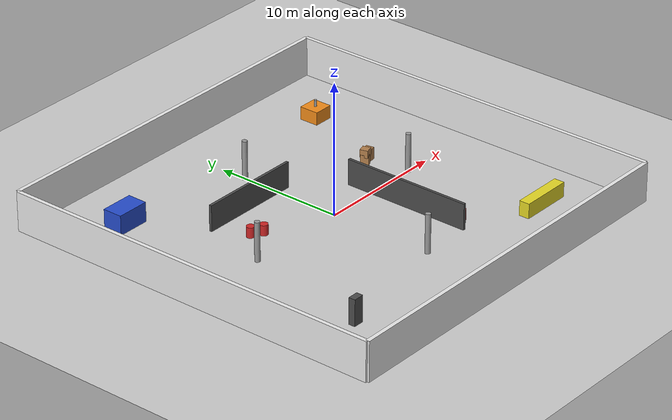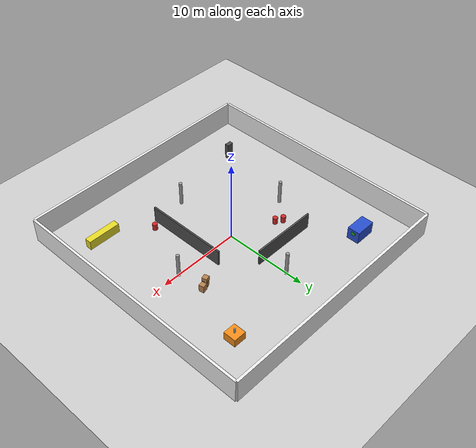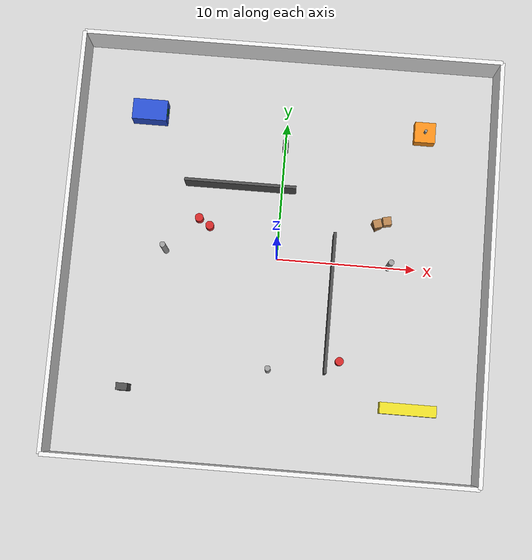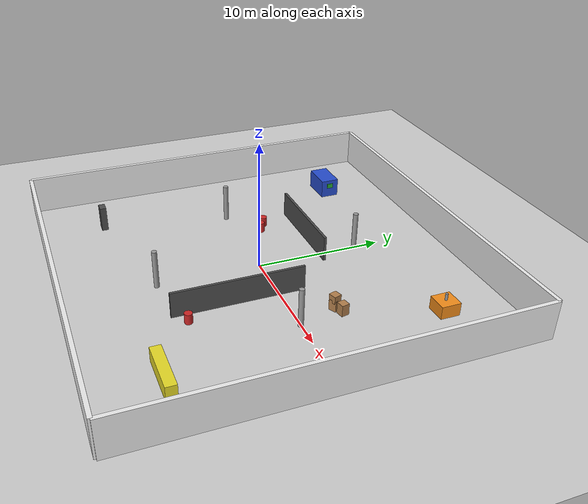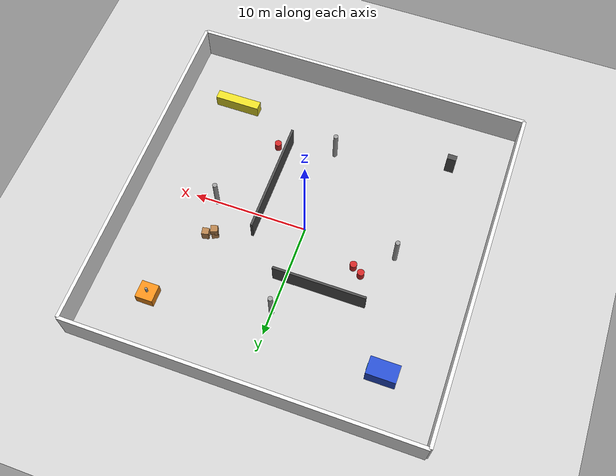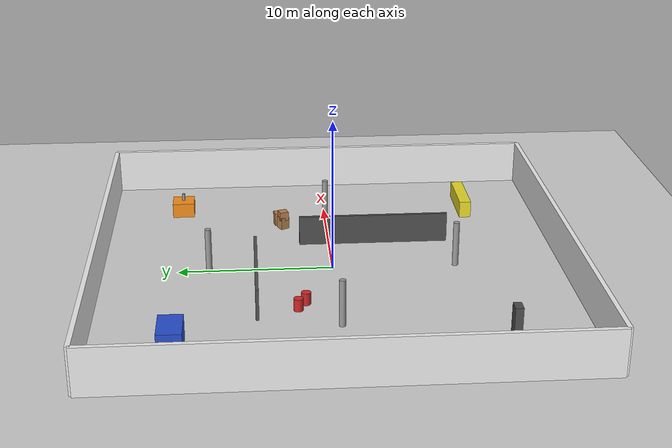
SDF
<?xml version="1.0" ?>
<sdf version="1.6">
  <world name="factory_world">

    <!-- ═══════════════════════════════════════
         PHYSICS AND ENVIRONMENT
    ═══════════════════════════════════════ -->
    <physics type="ode">
      <real_time_update_rate>1000.0</real_time_update_rate>
      <max_step_size>0.001</max_step_size>
      <real_time_factor>1.0</real_time_factor>
    </physics>

    <gravity>0 0 -9.81</gravity>

    <!-- Sun light -->
    <light name="sun" type="directional">
      <cast_shadows>true</cast_shadows>
      <pose>0 0 20 0 0 0</pose>
      <diffuse>0.9 0.9 0.9 1</diffuse>
      <specular>0.3 0.3 0.3 1</specular>
      <direction>-0.5 0.2 -1.0</direction>
    </light>

    <!-- Ceiling lights -->
    <light name="ceiling_light_1" type="point">
      <pose>0 0 6 0 0 0</pose>
      <diffuse>0.8 0.8 0.8 1</diffuse>
      <specular>0.1 0.1 0.1 1</specular>
      <attenuation>
        <range>20</range>
        <linear>0.05</linear>
        <constant>0.1</constant>
        <quadratic>0.001</quadratic>
      </attenuation>
    </light>

    <light name="ceiling_light_2" type="point">
      <pose>10 0 6 0 0 0</pose>
      <diffuse>0.8 0.8 0.8 1</diffuse>
      <specular>0.1 0.1 0.1 1</specular>
      <attenuation>
        <range>20</range>
        <linear>0.05</linear>
        <constant>0.1</constant>
        <quadratic>0.001</quadratic>
      </attenuation>
    </light>

    <light name="ceiling_light_3" type="point">
      <pose>-10 0 6 0 0 0</pose>
      <diffuse>0.8 0.8 0.8 1</diffuse>
      <specular>0.1 0.1 0.1 1</specular>
      <attenuation>
        <range>20</range>
        <linear>0.05</linear>
        <constant>0.1</constant>
        <quadratic>0.001</quadratic>
      </attenuation>
    </light>

    <!-- Ground plane -->
    <model name="ground_plane">
      <static>true</static>
      <link name="link">
        <collision name="collision">
          <geometry>
            <plane>
              <normal>0 0 1</normal>
              <size>50 50</size>
            </plane>
          </geometry>
          <surface>
            <friction>
              <ode>
                <mu>1.0</mu>
                <mu2>1.0</mu2>
              </ode>
            </friction>
          </surface>
        </collision>
        <visual name="visual">
          <geometry>
            <plane>
              <normal>0 0 1</normal>
              <size>50 50</size>
            </plane>
          </geometry>
          <material>
            <script>
              <uri>file://media/materials/scripts/gazebo.material</uri>
              <name>Gazebo/Grey</name>
            </script>
          </material>
        </visual>
      </link>
    </model>

    <!-- ═══════════════════════════════════════
         FACTORY OUTER WALLS
    ═══════════════════════════════════════ -->

    <!-- North wall -->
    <model name="wall_north">
      <static>true</static>
      <pose>0 15 1.5 0 0 0</pose>
      <link name="link">
        <collision name="collision">
          <geometry><box><size>30 0.3 3.0</size></box></geometry>
        </collision>
        <visual name="visual">
          <geometry><box><size>30 0.3 3.0</size></box></geometry>
          <material>
            <script>
              <uri>file://media/materials/scripts/gazebo.material</uri>
              <name>Gazebo/White</name>
            </script>
          </material>
        </visual>
      </link>
    </model>

    <!-- South wall -->
    <model name="wall_south">
      <static>true</static>
      <pose>0 -15 1.5 0 0 0</pose>
      <link name="link">
        <collision name="collision">
          <geometry><box><size>30 0.3 3.0</size></box></geometry>
        </collision>
        <visual name="visual">
          <geometry><box><size>30 0.3 3.0</size></box></geometry>
          <material>
            <script>
              <uri>file://media/materials/scripts/gazebo.material</uri>
              <name>Gazebo/White</name>
            </script>
          </material>
        </visual>
      </link>
    </model>

    <!-- East wall -->
    <model name="wall_east">
      <static>true</static>
      <pose>15 0 1.5 0 0 0</pose>
      <link name="link">
        <collision name="collision">
          <geometry><box><size>0.3 30 3.0</size></box></geometry>
        </collision>
        <visual name="visual">
          <geometry><box><size>0.3 30 3.0</size></box></geometry>
          <material>
            <script>
              <uri>file://media/materials/scripts/gazebo.material</uri>
              <name>Gazebo/White</name>
            </script>
          </material>
        </visual>
      </link>
    </model>

    <!-- West wall -->
    <model name="wall_west">
      <static>true</static>
      <pose>-15 0 1.5 0 0 0</pose>
      <link name="link">
        <collision name="collision">
          <geometry><box><size>0.3 30 3.0</size></box></geometry>
        </collision>
        <visual name="visual">
          <geometry><box><size>0.3 30 3.0</size></box></geometry>
          <material>
            <script>
              <uri>file://media/materials/scripts/gazebo.material</uri>
              <name>Gazebo/White</name>
            </script>
          </material>
        </visual>
      </link>
    </model>

    <!-- ═══════════════════════════════════════
         INNER DIVIDER WALLS
    ═══════════════════════════════════════ -->

    <!-- Divider wall 1 — horizontal corridor divider -->
    <model name="divider_1">
      <static>true</static>
      <pose>-3 5 1.0 0 0 0</pose>
      <link name="link">
        <collision name="collision">
          <geometry><box><size>8 0.2 2.0</size></box></geometry>
        </collision>
        <visual name="visual">
          <geometry><box><size>8 0.2 2.0</size></box></geometry>
          <material>
            <script>
              <uri>file://media/materials/scripts/gazebo.material</uri>
              <name>Gazebo/DarkGrey</name>
            </script>
          </material>
        </visual>
      </link>
    </model>

    <!-- Divider wall 2 — vertical corridor divider -->
    <model name="divider_2">
      <static>true</static>
      <pose>4 -3 1.0 0 0 1.5708</pose>
      <link name="link">
        <collision name="collision">
          <geometry><box><size>10 0.2 2.0</size></box></geometry>
        </collision>
        <visual name="visual">
          <geometry><box><size>10 0.2 2.0</size></box></geometry>
          <material>
            <script>
              <uri>file://media/materials/scripts/gazebo.material</uri>
              <name>Gazebo/DarkGrey</name>
            </script>
          </material>
        </visual>
      </link>
    </model>

    <!-- ═══════════════════════════════════════
         MACHINES — INSPECTION TARGETS
    ═══════════════════════════════════════ -->

    <!-- Machine 1 — large industrial box (zone A) -->
    <model name="machine_1">
      <static>true</static>
      <pose>-10 10 0.75 0 0 0</pose>
      <link name="link">
        <collision name="collision">
          <geometry><box><size>2.5 1.5 1.5</size></box></geometry>
        </collision>
        <visual name="visual">
          <geometry><box><size>2.5 1.5 1.5</size></box></geometry>
          <material>
            <script>
              <uri>file://media/materials/scripts/gazebo.material</uri>
              <name>Gazebo/Blue</name>
            </script>
          </material>
        </visual>
      </link>
    </model>

    <!-- Machine 1 panel indicator -->
    <model name="machine_1_panel">
      <static>true</static>
      <pose>-8.74 10 1.0 0 0 0</pose>
      <link name="link">
        <collision name="collision">
          <geometry><box><size>0.05 0.5 0.4</size></box></geometry>
        </collision>
        <visual name="visual">
          <geometry><box><size>0.05 0.5 0.4</size></box></geometry>
          <material>
            <script>
              <uri>file://media/materials/scripts/gazebo.material</uri>
              <name>Gazebo/Green</name>
            </script>
          </material>
        </visual>
      </link>
    </model>

    <!-- Machine 2 — medium pump unit (zone B) -->
    <model name="machine_2">
      <static>true</static>
      <pose>10 10 0.5 0 0 0</pose>
      <link name="link">
        <collision name="collision">
          <geometry><box><size>1.5 1.5 1.0</size></box></geometry>
        </collision>
        <visual name="visual">
          <geometry><box><size>1.5 1.5 1.0</size></box></geometry>
          <material>
            <script>
              <uri>file://media/materials/scripts/gazebo.material</uri>
              <name>Gazebo/Orange</name>
            </script>
          </material>
        </visual>
      </link>
    </model>

    <!-- Machine 2 pipe -->
    <model name="machine_2_pipe">
      <static>true</static>
      <pose>10 10 1.25 0 0 0</pose>
      <link name="link">
        <collision name="collision">
          <geometry><cylinder><radius>0.1</radius><length>0.5</length></cylinder></geometry>
        </collision>
        <visual name="visual">
          <geometry><cylinder><radius>0.1</radius><length>0.5</length></cylinder></geometry>
          <material>
            <script>
              <uri>file://media/materials/scripts/gazebo.material</uri>
              <name>Gazebo/Grey</name>
            </script>
          </material>
        </visual>
      </link>
    </model>

    <!-- Machine 3 — control cabinet (zone C) -->
    <model name="machine_3">
      <static>true</static>
      <pose>-10 -10 1.0 0 0 0</pose>
      <link name="link">
        <collision name="collision">
          <geometry><box><size>0.8 0.5 2.0</size></box></geometry>
        </collision>
        <visual name="visual">
          <geometry><box><size>0.8 0.5 2.0</size></box></geometry>
          <material>
            <script>
              <uri>file://media/materials/scripts/gazebo.material</uri>
              <name>Gazebo/DarkGrey</name>
            </script>
          </material>
        </visual>
      </link>
    </model>

    <!-- Machine 4 — conveyor belt unit (zone D) -->
    <model name="machine_4">
      <static>true</static>
      <pose>10 -10 0.3 0 0 0</pose>
      <link name="link">
        <collision name="collision">
          <geometry><box><size>4.0 0.8 1.6</size></box></geometry>
        </collision>
        <visual name="visual">
          <geometry><box><size>4.0 0.8 1.6</size></box></geometry>
          <material>
            <script>
              <uri>file://media/materials/scripts/gazebo.material</uri>
              <name>Gazebo/Yellow</name>
            </script>
          </material>
        </visual>
      </link>
    </model>

    <!-- Machine 4 legs -->
    <model name="machine_4_leg_1">
      <static>true</static>
      <pose>11.5 -10 0.15 0 0 0</pose>
      <link name="link">
        <collision name="collision">
          <geometry><cylinder><radius>0.06</radius><length>0.3</length></cylinder></geometry>
        </collision>
        <visual name="visual">
          <geometry><cylinder><radius>0.06</radius><length>0.3</length></cylinder></geometry>
          <material>
            <script>
              <uri>file://media/materials/scripts/gazebo.material</uri>
              <name>Gazebo/Grey</name>
            </script>
          </material>
        </visual>
      </link>
    </model>

    <model name="machine_4_leg_2">
      <static>true</static>
      <pose>8.5 -10 0.15 0 0 0</pose>
      <link name="link">
        <collision name="collision">
          <geometry><cylinder><radius>0.06</radius><length>0.3</length></cylinder></geometry>
        </collision>
        <visual name="visual">
          <geometry><cylinder><radius>0.06</radius><length>0.3</length></cylinder></geometry>
          <material>
            <script>
              <uri>file://media/materials/scripts/gazebo.material</uri>
              <name>Gazebo/Grey</name>
            </script>
          </material>
        </visual>
      </link>
    </model>

    <!-- ═══════════════════════════════════════
         OBSTACLES — BARRELS AND BOXES
    ═══════════════════════════════════════ -->

    <!-- Barrels cluster 1 -->
    <model name="barrel_1">
      <static>true</static>
      <pose>-5 2 0.4 0 0 0</pose>
      <link name="link">
        <collision name="collision">
          <geometry><cylinder><radius>0.3</radius><length>0.8</length></cylinder></geometry>
        </collision>
        <visual name="visual">
          <geometry><cylinder><radius>0.3</radius><length>0.8</length></cylinder></geometry>
          <material>
            <script>
              <uri>file://media/materials/scripts/gazebo.material</uri>
              <name>Gazebo/Red</name>
            </script>
          </material>
        </visual>
      </link>
    </model>

    <model name="barrel_2">
      <static>true</static>
      <pose>-5.8 2.5 0.4 0 0 0</pose>
      <link name="link">
        <collision name="collision">
          <geometry><cylinder><radius>0.3</radius><length>0.8</length></cylinder></geometry>
        </collision>
        <visual name="visual">
          <geometry><cylinder><radius>0.3</radius><length>0.8</length></cylinder></geometry>
          <material>
            <script>
              <uri>file://media/materials/scripts/gazebo.material</uri>
              <name>Gazebo/Red</name>
            </script>
          </material>
        </visual>
      </link>
    </model>

    <model name="barrel_3">
      <static>true</static>
      <pose>5 -7 0.4 0 0 0</pose>
      <link name="link">
        <collision name="collision">
          <geometry><cylinder><radius>0.3</radius><length>0.8</length></cylinder></geometry>
        </collision>
        <visual name="visual">
          <geometry><cylinder><radius>0.3</radius><length>0.8</length></cylinder></geometry>
          <material>
            <script>
              <uri>file://media/materials/scripts/gazebo.material</uri>
              <name>Gazebo/Red</name>
            </script>
          </material>
        </visual>
      </link>
    </model>

    <!-- Storage boxes -->
    <model name="box_1">
      <static>true</static>
      <pose>7 3 0.3 0 0 0.5</pose>
      <link name="link">
        <collision name="collision">
          <geometry><box><size>0.6 0.6 1.0</size></box></geometry>
        </collision>
        <visual name="visual">
          <geometry><box><size>0.6 0.6 1.0</size></box></geometry>
          <material>
            <script>
              <uri>file://media/materials/scripts/gazebo.material</uri>
              <name>Gazebo/WoodFloor</name>
            </script>
          </material>
        </visual>
      </link>
    </model>

    <model name="box_2">
      <static>true</static>
      <pose>7.7 3.3 0.3 0 0 0.2</pose>
      <link name="link">
        <collision name="collision">
          <geometry><box><size>0.6 0.6 1.1</size></box></geometry>
        </collision>
        <visual name="visual">
          <geometry><box><size>0.6 0.6 1.1</size></box></geometry>
          <material>
            <script>
              <uri>file://media/materials/scripts/gazebo.material</uri>
              <name>Gazebo/WoodFloor</name>
            </script>
          </material>
        </visual>
      </link>
    </model>

    <model name="box_3">
      <static>true</static>
      <pose>7 3 0.9 0 0 0.3</pose>
      <link name="link">
        <collision name="collision">
          <geometry><box><size>0.6 0.6 0.6</size></box></geometry>
        </collision>
        <visual name="visual">
          <geometry><box><size>0.6 0.6 0.6</size></box></geometry>
          <material>
            <script>
              <uri>file://media/materials/scripts/gazebo.material</uri>
              <name>Gazebo/WoodFloor</name>
            </script>
          </material>
        </visual>
      </link>
    </model>

    <!-- ═══════════════════════════════════════
         SUPPORT PILLARS
    ═══════════════════════════════════════ -->

    <model name="pillar_1">
      <static>true</static>
      <pose>-8 0 1.5 0 0 0</pose>
      <link name="link">
        <collision name="collision">
          <geometry><cylinder><radius>0.2</radius><length>3.0</length></cylinder></geometry>
        </collision>
        <visual name="visual">
          <geometry><cylinder><radius>0.2</radius><length>3.0</length></cylinder></geometry>
          <material>
            <script>
              <uri>file://media/materials/scripts/gazebo.material</uri>
              <name>Gazebo/Grey</name>
            </script>
          </material>
        </visual>
      </link>
    </model>

    <model name="pillar_2">
      <static>true</static>
      <pose>8 0 1.5 0 0 0</pose>
      <link name="link">
        <collision name="collision">
          <geometry><cylinder><radius>0.2</radius><length>3.0</length></cylinder></geometry>
        </collision>
        <visual name="visual">
          <geometry><cylinder><radius>0.2</radius><length>3.0</length></cylinder></geometry>
          <material>
            <script>
              <uri>file://media/materials/scripts/gazebo.material</uri>
              <name>Gazebo/Grey</name>
            </script>
          </material>
        </visual>
      </link>
    </model>

    <model name="pillar_3">
      <static>true</static>
      <pose>0 8 1.5 0 0 0</pose>
      <link name="link">
        <collision name="collision">
          <geometry><cylinder><radius>0.2</radius><length>3.0</length></cylinder></geometry>
        </collision>
        <visual name="visual">
          <geometry><cylinder><radius>0.2</radius><length>3.0</length></cylinder></geometry>
          <material>
            <script>
              <uri>file://media/materials/scripts/gazebo.material</uri>
              <name>Gazebo/Grey</name>
            </script>
          </material>
        </visual>
      </link>
    </model>

    <model name="pillar_4">
      <static>true</static>
      <pose>0 -8 1.5 0 0 0</pose>
      <link name="link">
        <collision name="collision">
          <geometry><cylinder><radius>0.2</radius><length>3.0</length></cylinder></geometry>
        </collision>
        <visual name="visual">
          <geometry><cylinder><radius>0.2</radius><length>3.0</length></cylinder></geometry>
          <material>
            <script>
              <uri>file://media/materials/scripts/gazebo.material</uri>
              <name>Gazebo/Grey</name>
            </script>
          </material>
        </visual>
      </link>
    </model>

  </world>
</sdf>
